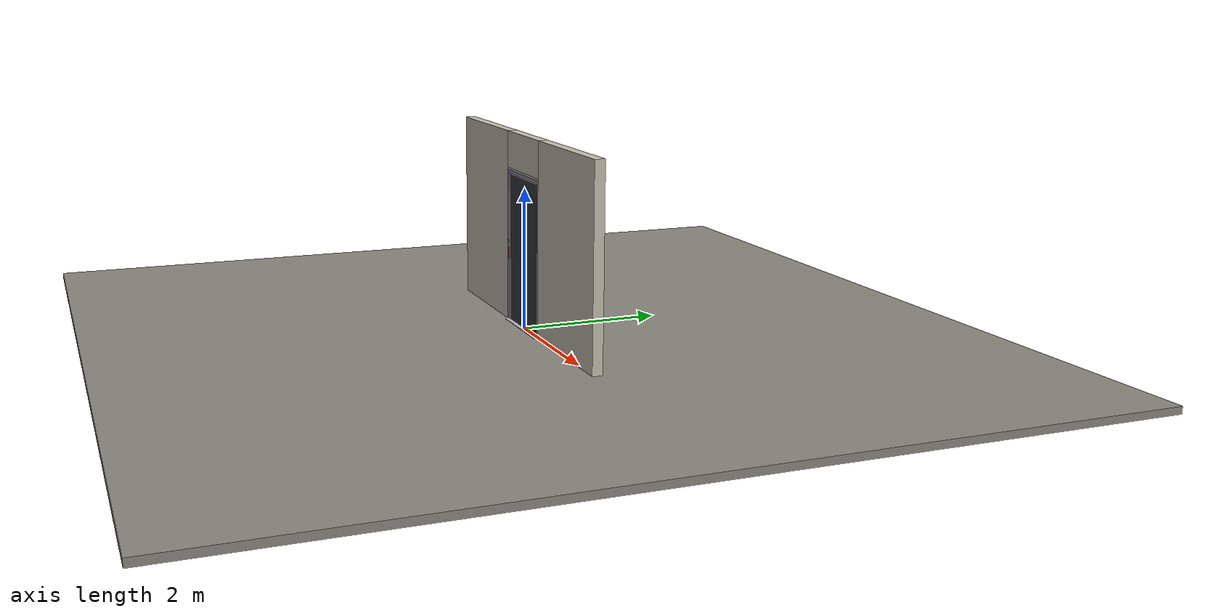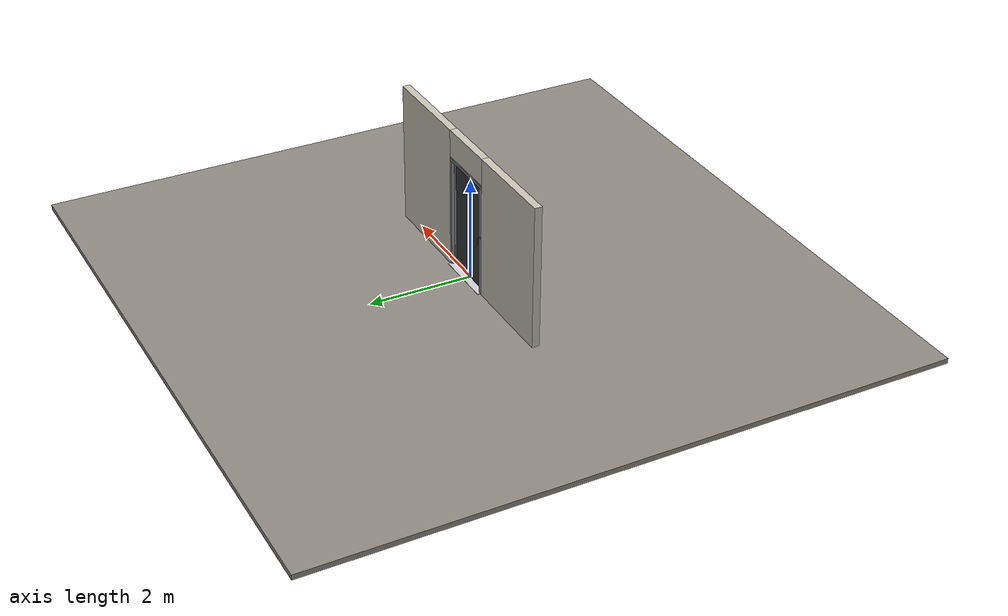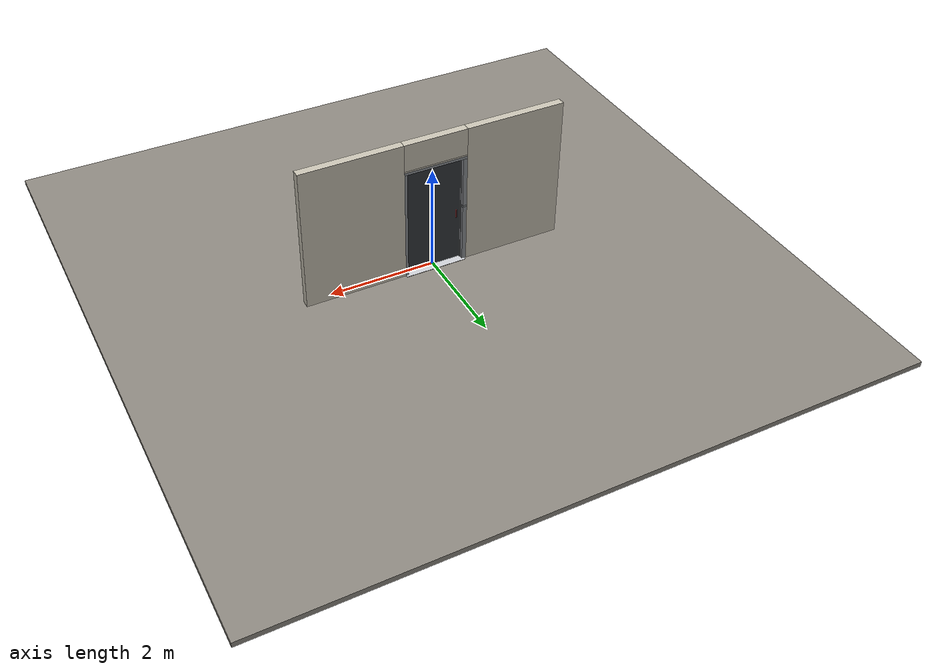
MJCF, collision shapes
<?xml version="1.0" ?>
<mujoco model="db0397_swing_single_minimal">
  <compiler angle="radian" meshdir="../../hardware" texturedir="../../textures" autolimits="true" inertiafromgeom="false"/>
  <option timestep="0.002" integrator="implicitfast" cone="elliptic" impratio="10" noslip_iterations="3">
    <flag multiccd="enable"/>
  </option>
  <size memory="16M"/>
  <default>
    <geom condim="4" solref="0.005 1" solimp="0.95 0.99 0.001"/>
    <joint solreflimit="0.005 1" solimplimit="0.95 0.99 0.001"/>
    <tendon solreflimit="0.005 1"/>
    <equality solref="0.002 1"/>
  </default>
  <visual>
    <headlight ambient="0.4 0.4 0.4" diffuse="0.7 0.7 0.7" specular="0.2 0.2 0.2"/>
    <quality shadowsize="4096"/>
    <map znear="0.01" zfar="60"/>
  </visual>
  <asset>
    <mesh name="pull_1e5d69a91a" file="pull_1e5d69a91a.obj"/>
    <material name="mat_floor" rgba="0.55 0.53 0.5 1" specular="0.2" shininess="0.15" reflectance="0"/>
    <material name="mat_wall" rgba="0.78 0.76 0.7 1" specular="0.2" shininess="0.1" reflectance="0"/>
    <material name="mat_leaf" rgba="0.2 0.21 0.23 1" specular="0.23" shininess="0.54" reflectance="0.02"/>
    <material name="mat_hinge" rgba="0.65 0.66 0.68 1" specular="0.74" shininess="0.5" reflectance="0.36"/>
    <material name="mat_op_stainless" rgba="0.75 0.76 0.77 1" specular="0.8" shininess="0.65" reflectance="0.4"/>
    <material name="mat_deadbolt" rgba="0.85 0.66 0.3 1" specular="0.8" shininess="0.75" reflectance="0.4"/>
    <material name="mat_frame" rgba="0.55 0.56 0.58 1" specular="0.8" shininess="0.55" reflectance="0.4"/>
    <material name="mat_threshold" rgba="0.8 0.81 0.83 1" specular="0.8" shininess="0.6" reflectance="0.4"/>
    <texture name="skybox" type="skybox" builtin="gradient" rgb1="0.6 0.7 0.85" rgb2="0.9 0.92 0.95" width="256" height="256"/>
  </asset>
  <worldbody>
    <light name="sun" pos="1.5 -2.5 4" dir="-0.3 0.5 -0.8" directional="true" diffuse="0.8 0.8 0.8" specular="0.3 0.3 0.3" castshadow="true"/>
    <light name="fill" pos="-1.5 2.5 3" dir="0.3 -0.5 -0.7" directional="true" diffuse="0.35 0.35 0.4" castshadow="false"/>
    <camera name="robot_view" pos="0 -2.594313 1.812087" xyaxes="1 0 0 0 0.26963 0.962964" fovy="52"/>
    <camera name="far_view" pos="0 2.681312 1.812087" xyaxes="-1 0 0 0 -0.26963 0.962964" fovy="52"/>
    <camera name="iso" pos="-2.004737 -2.172262 2.234138" xyaxes="0.741536 -0.670913 0 0.242917 0.268487 0.932151" fovy="46"/>
    <camera name="detail_handle" pos="-0.248 -0.882 1.296" xyaxes="0.97561 0.219512 0 -0.070934 0.315262 0.94635" fovy="38"/>
    <geom name="floor" type="box" size="6 6 0.05" pos="0 0 -0.05" material="mat_floor" group="0" contype="1" conaffinity="1" friction="0.8 0.005 0.0001" density="2400"/>
    <geom name="wall_left" type="box" size="0.9415 0.0725 1.3735" pos="-1.5585 0.0435 1.3735" material="mat_wall" group="0" contype="1" conaffinity="1" friction="0.6 0.005 0.0001" density="800"/>
    <geom name="wall_right" type="box" size="0.9565 0.0725 1.3735" pos="1.5435 0.0435 1.3735" material="mat_wall" group="0" contype="1" conaffinity="1" friction="0.6 0.005 0.0001" density="800"/>
    <geom name="wall_header" type="box" size="0.602 0.0725 0.26" pos="-0.015 0.0435 2.487" material="mat_wall" group="0" contype="1" conaffinity="1" friction="0.6 0.005 0.0001" density="800"/>
    <geom name="jamb_hinge" type="box" size="0.025 0.0725 1.0735" pos="0.562 0.0435 1.0735" material="mat_frame" group="0" contype="1" conaffinity="1" friction="0.6 0.005 0.0001" density="300"/>
    <geom name="strike_1156_wall_n" type="box" size="0.04 0.05325 0.0155" pos="-0.577 0.06275 1.156" material="mat_frame" group="0" contype="1" conaffinity="1" friction="0.6 0.005 0.0001" density="300"/>
    <geom name="strike_1156_wall_p" type="box" size="0.04 0.00975 0.0155" pos="-0.577 -0.01925 1.156" material="mat_frame" group="0" contype="1" conaffinity="1" friction="0.6 0.005 0.0001" density="300"/>
    <geom name="strike_1156_back" type="box" size="0.0253 0.0095 0.0155" pos="-0.5917 0 1.156" material="mat_frame" group="0" contype="1" conaffinity="1" friction="0.6 0.005 0.0001" density="300"/>
    <geom name="jamb_strike_0" type="box" size="0.04 0.0725 0.57025" pos="-0.577 0.0435 0.57025" material="mat_frame" group="0" contype="1" conaffinity="1" friction="0.6 0.005 0.0001" density="300"/>
    <geom name="jamb_strike_1" type="box" size="0.04 0.0725 0.48775" pos="-0.577 0.0435 1.65925" material="mat_frame" group="0" contype="1" conaffinity="1" friction="0.6 0.005 0.0001" density="300"/>
    <geom name="jamb_head" type="box" size="0.602 0.0725 0.025" pos="-0.015 0.0435 2.172" material="mat_frame" group="0" contype="1" conaffinity="1" friction="0.6 0.005 0.0001" density="300"/>
    <geom name="head_stud" type="box" size="0.602 0.0725 0.015" pos="-0.015 0.0435 2.212" material="mat_wall" group="0" contype="1" conaffinity="1" friction="0.6 0.005 0.0001" density="500"/>
    <geom name="stop_hinge" type="box" size="0.0055 0.016 1.0735" pos="0.5315 0.0385 1.0735" material="mat_frame" group="0" contype="1" conaffinity="1" friction="0.6 0.005 0.0001" density="300"/>
    <geom name="stop_strike" type="box" size="0.0055 0.016 1.0735" pos="-0.5315 0.0385 1.0735" material="mat_frame" group="0" contype="1" conaffinity="1" friction="0.6 0.005 0.0001" density="300"/>
    <geom name="stop_head" type="box" size="0.537 0.016 0.0055" pos="0 0.0385 2.1415" material="mat_frame" group="0" contype="1" conaffinity="1" friction="0.6 0.005 0.0001" density="300"/>
    <geom name="threshold" type="box" size="0.587 0.1225 0.004" pos="0 0.0435 0.004" material="mat_threshold" group="0" contype="1" conaffinity="1" friction="0.6 0.005 0.0001" density="2700"/>
    <site name="approach_point" pos="0 -1.5 0" quat="1 0 0 0" size="0.05" rgba="0.2 0.9 0.2 0.5" group="4"/>
    <site name="goal_point" pos="0 1.5 0" quat="1 0 0 0" size="0.05" rgba="0.2 0.9 0.2 0.5" group="4"/>
    <site name="door_plane_center" pos="0 0 1.0735" quat="1 0 0 0" size="0.02" rgba="0.2 0.9 0.2 0.5" group="4"/>
    <body name="leaf" pos="0.537 0 0">
      <inertial pos="-0.540418 0 1.075451" mass="99.055512" quat="0.499792 -0.499792 0.500208 0.500208" diaginertia="9.497598855 37.274406609 46.73013851"/>
      <joint name="leaf_hinge" type="hinge" axis="0 0 1" pos="-0.003 -0.029 0" limited="true" range="0 1.570796" damping="0.54954" frictionloss="0.486912" armature="0.02"/>
      <geom name="leaf_slab" type="box" size="0.5335 0.022 1.067" pos="-0.5365 0 1.076" material="mat_leaf" group="0" contype="1" conaffinity="1" friction="0.45 0.005 0.0001" density="1"/>
      <geom name="leaf_pull_n" type="mesh" mesh="pull_1e5d69a91a" pos="-0.965 -0.022 1.016" quat="0 0 -0.707107 0.707107" material="mat_op_stainless" group="1" contype="0" conaffinity="0" density="3000"/>
      <geom name="leaf_pull_col_n" type="capsule" size="0.0095 0.08" pos="-0.965 -0.082 1.016" material="mat_op_stainless" group="3" contype="1" conaffinity="1" rgba="0.8 0.3 0.3 0.25" friction="0.7 0.01 0.0001" density="3000"/>
      <geom name="leaf_pull_p" type="mesh" mesh="pull_1e5d69a91a" pos="-0.965 0.022 1.016" quat="0 0 0.707107 0.707107" material="mat_op_stainless" group="1" contype="0" conaffinity="0" density="3000"/>
      <geom name="leaf_pull_col_p" type="capsule" size="0.0095 0.08" pos="-0.965 0.082 1.016" material="mat_op_stainless" group="3" contype="1" conaffinity="1" rgba="0.8 0.3 0.3 0.25" friction="0.7 0.01 0.0001" density="3000"/>
      <site name="leaf_pull_grip_n" pos="-0.965 -0.082 1.016" quat="1 0 0 0" size="0.012" rgba="0.2 0.9 0.2 0.5" group="4"/>
      <site name="leaf_pull_grip_p" pos="-0.965 0.082 1.016" quat="1 0 0 0" size="0.012" rgba="0.2 0.9 0.2 0.5" group="4"/>
      <site name="leaf_edge_mid" pos="-1.07 0 1.067" quat="1 0 0 0" size="0.02" rgba="0.2 0.9 0.2 0.5" group="4"/>
    </body>
  </worldbody>
  <sensor>
    <jointpos name="leaf_hinge_pos" joint="leaf_hinge"/>
    <jointvel name="leaf_hinge_vel" joint="leaf_hinge"/>
  </sensor>
</mujoco>
